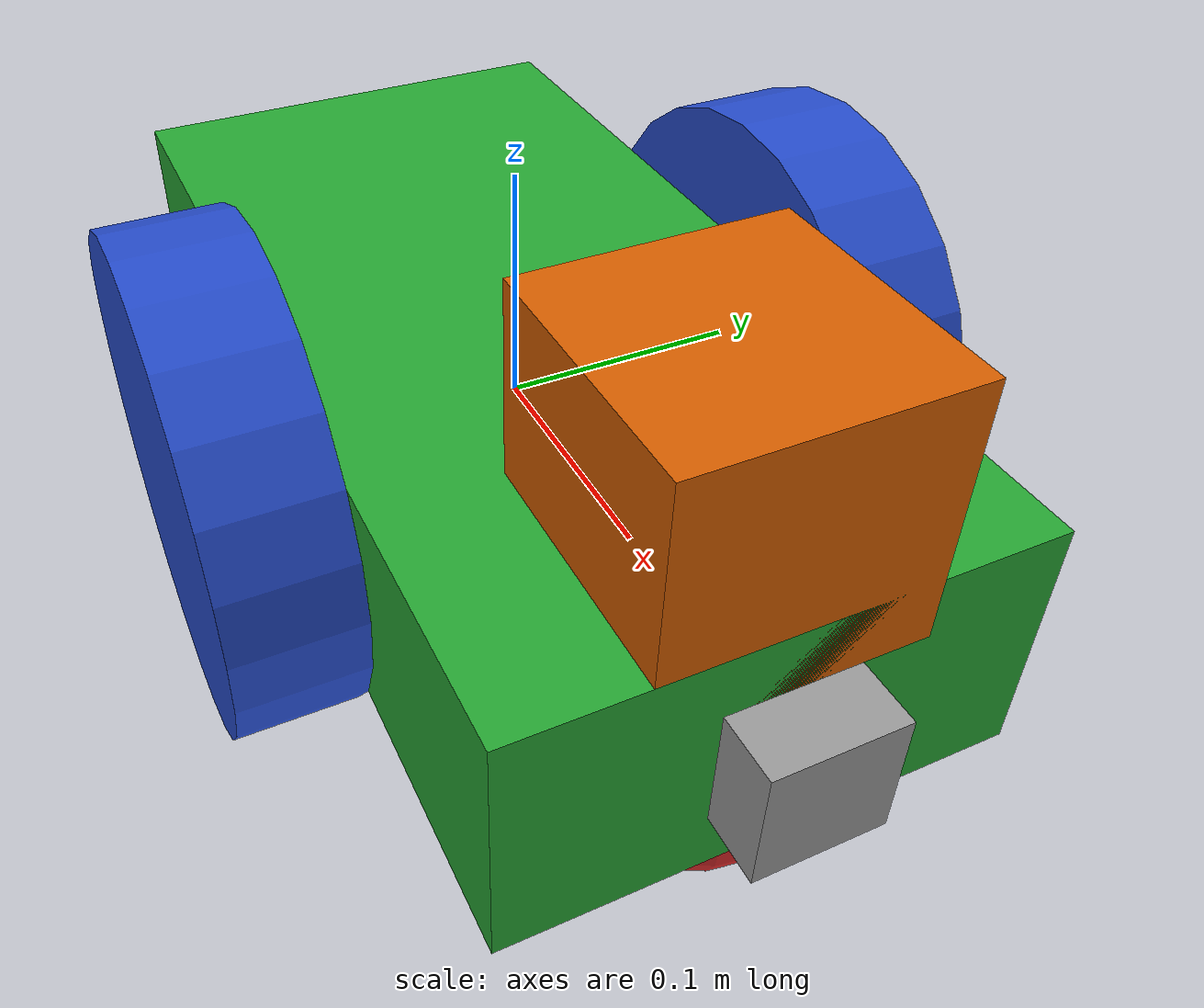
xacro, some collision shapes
<?xml version='1.0'?>

<robot name="my_robot" xmlns:xacro="http://www.ros.org/wiki/xacro">

  <gazebo>
    <plugin name="differential_drive_controller" filename="libgazebo_ros_diff_drive.so">
      <legacyMode>false</legacyMode>
      <alwaysOn>true</alwaysOn>
      <updateRate>10</updateRate>
      <leftJoint>left_wheel_hinge</leftJoint>
      <rightJoint>right_wheel_hinge</rightJoint>
      <wheelSeparation>0.4</wheelSeparation>
      <wheelDiameter>0.2</wheelDiameter>
      <torque>10</torque>
      <commandTopic>cmd_vel</commandTopic>
      <odometryTopic>odom</odometryTopic>
      <odometryFrame>odom</odometryFrame>
      <robotBaseFrame>robot_footprint</robotBaseFrame>
      <publishWheelTF>false</publishWheelTF>
      <publishWheelJointState>false</publishWheelJointState>
      <rosDebugLevel>na</rosDebugLevel>
      <wheelAcceleration>0</wheelAcceleration>
      <wheelTorque>5</wheelTorque>
      <odometrySource>world</odometrySource>
      <publishTf>1</publishTf>
      <publishOdomTF>true</publishOdomTF>
    </plugin>
  </gazebo>

  <!-- camera -->
  <gazebo reference="camera">
    <sensor type="camera" name="camera1">
      <update_rate>30.0</update_rate>
      <camera name="head">
        <horizontal_fov>1.3962634</horizontal_fov>
        <image>
          <width>800</width>
          <height>800</height>
          <format>R8G8B8</format>
        </image>
        <clip>
          <near>0.02</near>
          <far>300</far>
        </clip>
      </camera>
      <plugin name="camera_controller" filename="libgazebo_ros_camera.so">
        <alwaysOn>true</alwaysOn>
        <updateRate>0.0</updateRate>
        <cameraName>camera</cameraName>
        <imageTopicName>rgb/image_raw</imageTopicName>
        <cameraInfoTopicName>rgb/camera_info</cameraInfoTopicName>
        <frameName>camera</frameName>
        <hackBaseline>0.07</hackBaseline>
        <distortionK1>0.0</distortionK1>
        <distortionK2>0.0</distortionK2>
        <distortionK3>0.0</distortionK3>
        <distortionT1>0.0</distortionT1>
        <distortionT2>0.0</distortionT2>
      </plugin>
    </sensor>
  </gazebo>

  <!-- hokuyo -->
  <gazebo reference="hokuyo">
    <sensor type="ray" name="head_hokuyo_sensor">
      <pose>0 0 0 0 0 0</pose>
      <visualize>false</visualize>
      <update_rate>40</update_rate>
      <ray>
        <scan>
          <horizontal>
            <samples>720</samples>
            <resolution>1</resolution>
            <min_angle>-1.570796</min_angle>
            <max_angle>1.570796</max_angle>
          </horizontal>
        </scan>
        <range>
          <min>0.10</min>
          <max>30.0</max>
          <resolution>0.01</resolution>
        </range>
        <noise>
          <type>gaussian</type>
          <mean>0.0</mean>
          <stddev>0.01</stddev>
        </noise>
      </ray>
      <plugin name="gazebo_ros_head_hokuyo_controller" filename="libgazebo_ros_laser.so">
        <topicName>/scan</topicName>
        <frameName>hokuyo</frameName>
      </plugin>
    </sensor>
  </gazebo>

  <link name="robot_footprint"></link>

  <joint name="robot_footprint_joint" type="fixed">
    <origin xyz="0 0 0" rpy="0 0 0" />
    <parent link="robot_footprint"/>
    <child link="chassis" />
  </joint>

  <link name='chassis'>
    <pose>0 0 0.1 0 0 0</pose>

    <inertial>
      <mass value="15.0"/>
      <origin xyz="0.0 0 0" rpy=" 0 0 0"/>
      <inertia
          ixx="0.1" ixy="0" ixz="0"
          iyy="0.1" iyz="0"
          izz="0.1"
      />
    </inertial>

    <collision name='collision'>
      <origin xyz="0 0 0" rpy=" 0 0 0"/>
      <geometry>
        <box size=".4 .2 .1"/>
      </geometry>
    </collision>

    <visual name='chassis_visual'>
      <origin xyz="0 0 0" rpy=" 0 0 0"/>
      <material name="green"/>
      <geometry>
        <box size=".4 .2 .1"/>
      </geometry>
    </visual>

    <collision name='back_caster_collision'>
      <origin xyz="-0.15 0 -0.05" rpy=" 0 0 0"/>
      <geometry>
        <sphere radius="0.0499"/>
      </geometry>
    </collision>

    <visual name='back_caster_visual'>
      <origin xyz="-0.15 0 -0.05" rpy=" 0 0 0"/>
      <geometry>
        <sphere radius="0.05"/>
      </geometry>
    </visual>

    <collision name='front_caster_collision'>
      <origin xyz="0.15 0 -0.05" rpy=" 0 0 0"/>
      <geometry>
        <sphere radius="0.0499"/>
      </geometry>
    </collision>

    <visual name='front_caster_visual'>
      <origin xyz="0.15 0 -0.05" rpy=" 0 0 0"/>
      <geometry>
        <sphere radius="0.05"/>
      </geometry>
    </visual>
  </link>

  <joint type="continuous" name="left_wheel_hinge">
    <origin xyz="0 0.125 0" rpy="0 0 0"/>
    <child link="left_wheel"/>
    <parent link="chassis"/>
    <axis xyz="0 1 0" rpy="0 0 0"/>
    <limit effort="10000" velocity="1000"/>
    <dynamics damping="1.0" friction="1.0"/>
  </joint>

  <link name='left_wheel'>

    <inertial>
      <mass value="5.0"/>
      <origin xyz="0.0 0 0" rpy=" 0 1.5707 1.5707"/>
      <inertia
          ixx="0.1" ixy="0" ixz="0"
          iyy="0.1" iyz="0"
          izz="0.1"
      />
    </inertial>

    <collision name='left_wheel_collision'>
      <origin xyz="0 0 0" rpy=" 0 1.5707 1.5707"/>
      <geometry>
        <cylinder length="0.05" radius="0.1"/>
      </geometry>
    </collision>

    <visual name='left_wheel_visual'>
      <origin xyz="0 0 0" rpy=" 0 1.5707 1.5707"/>
      <material name="blue"/>
      <geometry>
        <cylinder length="0.05" radius="0.1"/>
      </geometry>
    </visual>

  </link>

  <joint type="continuous" name="right_wheel_hinge">
    <origin xyz="0 -0.125 0" rpy="0 0 0"/>
    <child link="right_wheel"/>
    <parent link="chassis"/>
    <axis xyz="0 1 0" rpy="0 0 0"/>
    <limit effort="10000" velocity="1000"/>
    <dynamics damping="1.0" friction="1.0"/>
  </joint>

  <link name='right_wheel'>

    <inertial>
      <mass value="5.0"/>
      <origin xyz="0.0 0 0" rpy=" 0 1.5707 1.5707"/>
      <inertia
          ixx="0.1" ixy="0" ixz="0"
          iyy="0.1" iyz="0"
          izz="0.1"
      />
    </inertial>

    <collision name='right_wheel_collision'>
      <origin xyz="0 0 0" rpy=" 0 1.5707 1.5707"/>
      <geometry>
        <cylinder length="0.05" radius="0.1"/>
      </geometry>
    </collision>

    <visual name='right_wheel_visual'>
      <origin xyz="0 0 0" rpy=" 0 1.5707 1.5707"/>
      <material name="blue"/>
      <geometry>
        <cylinder length="0.05" radius="0.1"/>
      </geometry>
    </visual>

  </link>

  <joint type="fixed" name="camera_joint">
    <origin xyz="0.2 0 0" rpy="0 0 0"/>
    <child link="camera"/>
    <parent link="chassis"/>
    <axis xyz="0 1 0" rpy="0 0 0"/>
  </joint>

  <link name='camera'>

    <inertial>
      <mass value="0.1"/>
      <origin xyz="0.0 0 0" rpy=" 0 0 0"/>
      <inertia
          ixx="1e-6" ixy="0" ixz="0"
          iyy="1e-6" iyz="0"
          izz="1e-6"
      />
    </inertial>

    <collision name='camera_collision'>
      <origin xyz="0 0 0" rpy=" 0 0.0 0"/>
      <geometry>
        <box size="0.05 0.05 0.05"/>
      </geometry>
    </collision>

    <visual name='camera_visual'>
      <origin xyz="0 0 0" rpy=" 0 0 0"/>
      <material name="grey"/>
      <geometry>
        <box size="0.05 0.05 0.05"/>
      </geometry>
    </visual>

  </link>

  <joint type="fixed" name="hokuyo_joint">
    <origin xyz="0.15 0 0.075" rpy="0 0 0"/>
    <child link="hokuyo"/>
    <parent link="chassis"/>
    <axis xyz="0 1 0" rpy="0 0 0"/>
  </joint>

  <link name='hokuyo'>

    <inertial>
      <mass value="1e-5"/>
      <origin xyz="0.0 0 0" rpy=" 0 0 0"/>
      <inertia
          ixx="1e-6" ixy="0" ixz="0"
          iyy="1e-6" iyz="0"
          izz="1e-6"
      />
    </inertial>

    <collision name='hokuyo_collision'>
      <origin xyz="0 0 0" rpy=" 0 0.0 0"/>
      <geometry>
        <box size="0.1 0.1 0.1"/>
      </geometry>
    </collision>

    <visual name='right_wheel_visual'>
      <origin xyz="0 0 0" rpy=" 0 0 0"/>
      <geometry>
        <mesh filename="package://my_robot/meshes/hokuyo.dae"/>
      </geometry>
    </visual>

  </link>

  <gazebo reference="left_wheel">
    <material>Gazebo/Blue</material>
  </gazebo>

  <gazebo reference="right_wheel">
    <material>Gazebo/Blue</material>
  </gazebo>

  <gazebo reference="camera">
    <material>Gazebo/Grey</material>
  </gazebo>

  <gazebo reference="chassis">
    <material>Gazebo/Red</material>
  </gazebo>

</robot>
